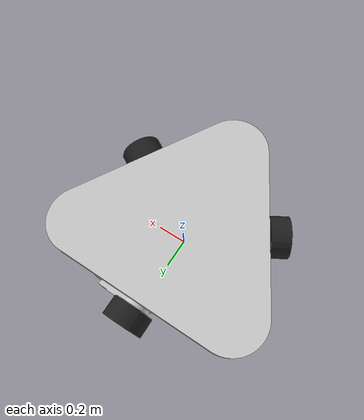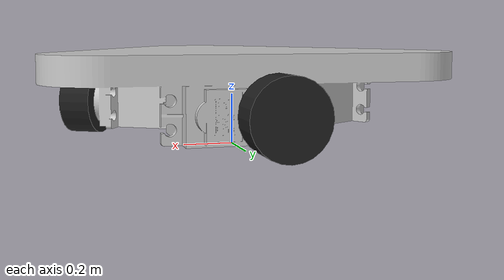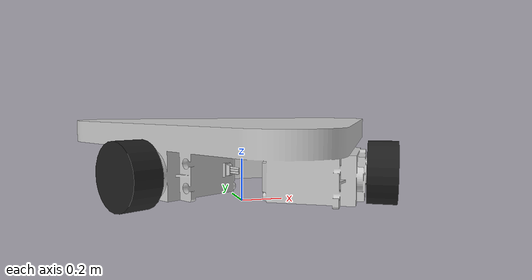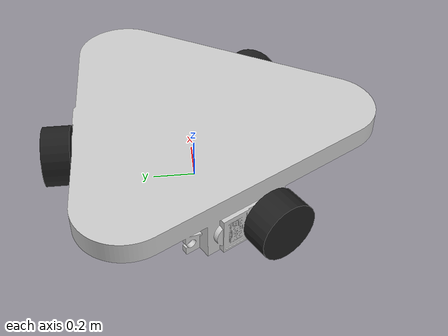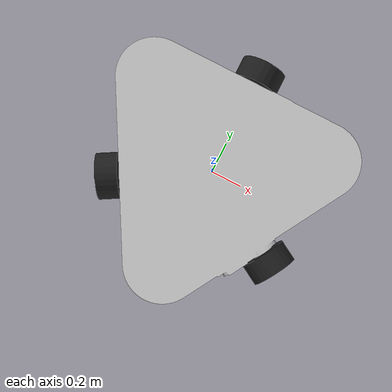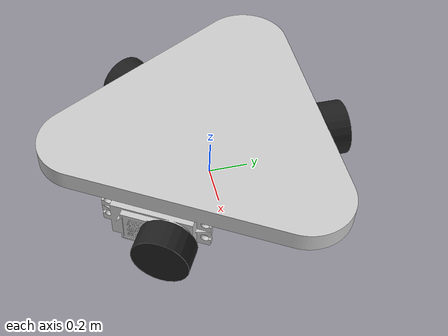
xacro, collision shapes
<?xml version="1.0"?>

<robot name="omni_wheel_bot" xmlns:xacro="http://www.ros.org/wiki/xacro">

    <link name="footprint_link">
    </link>
    <joint name="footprint_joint" type="fixed">
        <origin
            xyz="0.0 0.0 0.0"
            rpy="0 0 0" />
        <parent link="footprint_link" />
        <child link="base_link" />

    </joint>

    <!--Base
    link-->
    <link name="base_link">
        <inertial>
            <origin xyz="0 0.0 0.28" rpy="0 0 0" />
            <mass
                value="0.28" />
            <inertia
                ixx="0.011666666666667"
                ixy="0"
                ixz="0"
                iyy="0.011666666666667"
                iyz="0"
                izz="0.011666666666667" />

        </inertial>
        <collision name="collision">
            <origin
                xyz="0 0.0 0.28"
                rpy="0 0 0" />

            <geometry>
                <mesh filename="../meshes/base.dae" scale="0.01  0.01 0.01" />
            </geometry>
        </collision>
        <visual>
            <origin
                xyz="0 0 0.28"
                rpy="0 0 0" />
            <geometry>
                <mesh filename="../meshes/base.dae" scale="0.01 0.01 0.01" />
            </geometry>
        </visual>
    </link>

    <link name ="right_wheel">

        <inertial>
            <origin
                xyz="0 -0.05 0.0"
                rpy="1.57 0 0" />
            <mass
                value="0.060" />
            <inertia
                ixx="1.825e-4"
                ixy="0"
                ixz="0.00000000"
                iyy="1.825e-4"
                iyz="0"
                izz="1.825e-4" />
        </inertial>
         <collision name="R_collision">
         <origin
                xyz="0 -0.05 0.0"
                rpy="1.57 0 0" />
          <geometry>
            <cylinder length="0.13" radius="0.14"/>
          </geometry>
        </collision>

        <visual>
            <origin
            xyz="0.0 0.0 0.0"
            rpy="0.0 0.0 0.0" />
            <geometry>
                <mesh filename ="../meshes/wheel.stl" scale="5 5 5"/>
            </geometry>

        </visual>
    </link>

    <!-- left_wheel -->

    <link name ="left_wheel">

        <inertial>
            <origin
                xyz="0 -0.05 0.0"
                rpy="1.57 0 0" />
            <mass
                value="0.060" />
            <inertia
                ixx="1.825e-4"
                ixy="0"
                ixz="0.00000000"
                iyy="1.825e-4"
                iyz="0"
                izz="1.825e-4" />
        </inertial>
         <collision name="L_collision">
         <origin
                xyz="0 -0.05 0.0"
                rpy="1.57 0 0" />
          <geometry>
            <cylinder length="0.13" radius="0.14"/>
          </geometry>
        </collision>

        <visual>
            <origin
            xyz="0.0 0.0 0.0"
            rpy="0.0 0.0 0.0" />
            <geometry>
                <mesh filename ="../meshes/wheel.stl" scale="5 5 5"/>
            </geometry>

        </visual>
    </link>

    <!-- rear_wheel -->

    <link name ="rear_wheel">

        <inertial>
            <origin
                xyz="0 -0.05 0.0"
                rpy="1.57 0 0" />
            <mass
                value="0.060" />
            <inertia
                ixx="1.825e-4"
                ixy="0"
                ixz="0.00000000"
                iyy="1.825e-4"
                iyz="0"
                izz="1.825e-4" />
        </inertial>
         <collision name="RR_collision">
         <origin
                xyz="0 -0.05 0.0"
                rpy="1.57 0 0" />
          <geometry>
            <cylinder length="0.13" radius="0.14"/>
          </geometry>
        </collision>

        <visual>
            <origin
            xyz="0.0 0.0 0.0"
            rpy="0.0 0.0 0.0" />
            <geometry>
                <mesh filename ="../meshes/wheel.stl" scale="5 5 5"/>
            </geometry>

        </visual>
    </link>

        <!-- Joint -->
    <joint name ="right_wheel_joint" type="continuous" >
        <origin
                xyz="0.0 0.68 0.18"
                rpy="0 0 0" />
        <parent link="base_link"/>
        <child link="right_wheel"/>
        <axis xyz="0.0 1.0 0.0"/>
         <limit
            effort="5"
            velocity="5" />
    </joint>

    <!-- material properties -->
    <gazebo reference="right_wheel">
        <material>Gazebo/Black</material>
    </gazebo>

    <joint name ="left_wheel_joint" type="continuous" >
        <origin
                xyz="0.593 -0.37 0.16"
                rpy="0 0 -2.0944" />
        <parent link="base_link"/>
        <child link="left_wheel"/>
        <axis xyz="0.0 1.0 0.0"/>
         <limit
            effort="5"
            velocity="5" />
    </joint>

    <!-- material properties -->
    <gazebo reference="left_wheel">
        <material>Gazebo/Black</material>
    </gazebo>

    <joint name ="rear_wheel_joint" type="continuous" >
        <origin
                xyz="-0.578 -0.34 0.18"
                rpy="0 0 2.0944" />
        <parent link="base_link"/>
        <child link="rear_wheel"/>
        <axis xyz="0.0 1.0 0.0"/>
         <limit
            effort="5"
            velocity="5" />
    </joint>

    <!-- material properties -->
    <gazebo reference="rear_wheel">
        <material>Gazebo/Black</material>
    </gazebo>

</robot>
